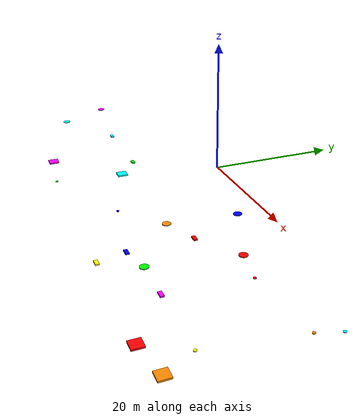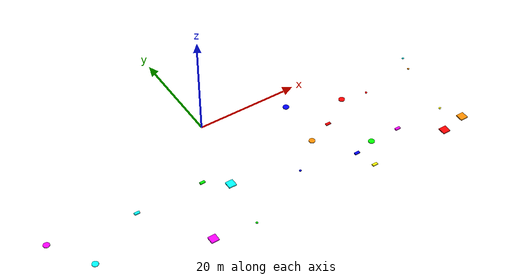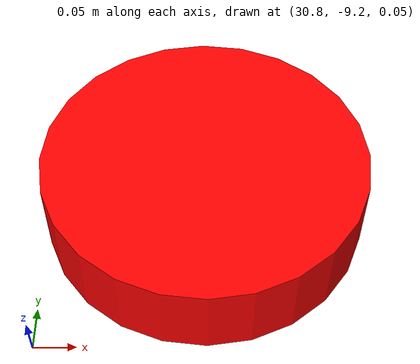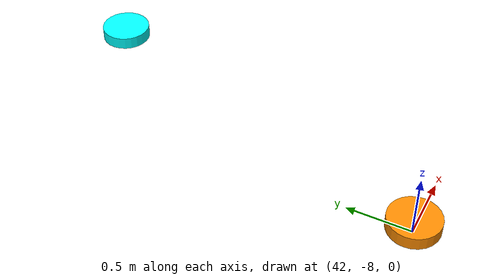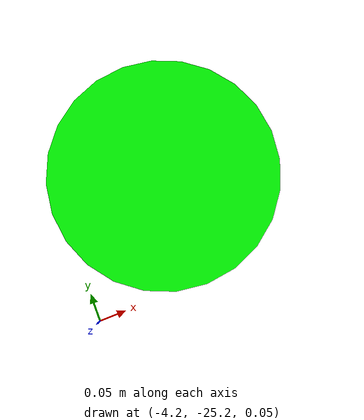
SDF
<sdf version="1.4">
 <world name="default">
  <physics type="ode">
   <max_step_size>0.001</max_step_size>
   <real_time_factor>1</real_time_factor>
   <real_time_update_rate>1000</real_time_update_rate>
   <gravity>0 0 -9.8</gravity>
  </physics>
  <spherical_coordinates>
   <surface_model>EARTH_WGS84</surface_model>
   <latitude_deg>24.4793194</latitude_deg>
   <longitude_deg>54.6105446</longitude_deg>
   <elevation>18</elevation>
   <heading_deg>0</heading_deg>
  </spherical_coordinates>
  <scene><sky><clouds><speed>12</speed></clouds></sky></scene>
  <include><uri>model://sun</uri></include>
  <model name="green_large_cylinder">
   <pose>24 -20 0 0 0 0</pose>
   <include><uri>model://cylinder_large_green</uri></include>
  </model>
  <model name="blue_large_cylinder">
   <pose>16 -4 0 0 0 0</pose>
   <include><uri>model://cylinder_large_blue</uri></include>
  </model>
  <model name="orange_large_cylinder">
   <pose>15 -14 0 0 0 0</pose>
   <include><uri>model://cylinder_large_orange</uri></include>
  </model>
  <model name="pink_large_cylinder">
   <pose>-36 -10 0 0 0 0</pose>
   <include><uri>model://cylinder_large_pink</uri></include>
  </model>
  <model name="cyan_large_cylinder">
   <pose>-31 -18 0 0 0 0</pose>
   <include><uri>model://cylinder_large_cyan</uri></include>
  </model>
  <model name="red_large_cylinder">
   <pose>26 -8 0 0 0 0</pose>
   <include><uri>model://cylinder_large_red</uri></include>
  </model>
  <model name="green_small_cylinder">
   <pose>-4 -25 0 0 0 0</pose>
   <include><uri>model://cylinder_small_green</uri></include>
  </model>
  <model name="blue_small_cylinder">
   <pose>9 -19 0 0 0 0</pose>
   <include><uri>model://cylinder_small_blue</uri></include>
  </model>
  <model name="yellow_small_cylinder">
   <pose>40 -20 0 0 0 0</pose>
   <include><uri>model://cylinder_small_yellow</uri></include>
  </model>
  <model name="orange_small_cylinder">
   <pose>42 -8 0 0 0 0</pose>
   <include><uri>model://cylinder_small_orange</uri></include>
  </model>
  <model name="cyan_small_cylinder">
   <pose>43 -5 0 0 0 0</pose>
   <include><uri>model://cylinder_small_cyan</uri></include>
  </model>
  <model name="red_small_cylinder">
   <pose>31 -9 0 0 0 0</pose>
   <include><uri>model://cylinder_small_red</uri></include>
  </model>
  <model name="orange_large_rectangle">
   <pose>42 -24 0 0 0 0</pose>
   <include><uri>model://rectangle_large_orange</uri></include>
  </model>
  <model name="pink_large_rectangle">
   <pose>-12 -24 0 0 0 0</pose>
   <include><uri>model://rectangle_large_pink</uri></include>
  </model>
  <model name="cyan_large_rectangle">
   <pose>-3 -15 0 0 0 0</pose>
   <include><uri>model://rectangle_large_cyan</uri></include>
  </model>
  <model name="red_large_rectangle">
   <pose>37 -25 0 0 0 0</pose>
   <include><uri>model://rectangle_large_red</uri></include>
  </model>
  <model name="green_small_object">
   <pose>-7 -12 0 0 0 0</pose>
   <include><uri>model://object_small_green</uri></include>
  </model>
  <model name="blue_small_object">
   <pose>20 -21 0 0 0 0</pose>
   <include><uri>model://object_small_blue</uri></include>
  </model>
  <model name="yellow_small_object">
   <pose>21 -25 0 0 0 0</pose>
   <include><uri>model://object_small_yellow</uri></include>
  </model>
  <model name="pink_small_object">
   <pose>30 -20 0 0 0 0</pose>
   <include><uri>model://object_small_pink</uri></include>
  </model>
  <model name="cyan_small_object">
   <pose>-20 -12 0 0 0 0</pose>
   <include><uri>model://object_small_cyan</uri></include>
  </model>
  <model name="red_small_object">
   <pose>20 -12 0 0 0 0</pose>
   <include><uri>model://object_small_red</uri></include>
  </model>
 </world>
</sdf>

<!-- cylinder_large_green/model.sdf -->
<sdf version='1.4'>
  <model name="small_cylinder_static_green">
    <link name="link" >
      <pose>0 0 0.1 0 0 0</pose>
      <inertial>
        <mass>0.5</mass>
        <inertia>
          <!-- http://answers.gazebosim.org/question/4372/the-inertia-matrix-explained/ -->
          <ixx>0.005914</ixx>    <!-- for a box: ixx = 0.083 * mass * (3*r*r + h*h) -->
          <ixy>0.0</ixy>         <!-- for a box: ixy = 0 -->
          <ixz>0.0</ixz>         <!-- for a box: ixz = 0 -->
          <iyy>0.005914</iyy>    <!-- for a box: iyy = 0.083 * mass * (3*r*r + h*h) -->
          <iyz>0.0</iyz>         <!-- for a box: iyz = 0 -->
          <izz>0.010000</izz>    <!-- for a box: izz = 0.5 * mass * (r*r) -->
        </inertia>
      </inertial>
      <collision name="collision">
        <geometry>
          <cylinder>
            <length>0.2</length>
            <radius>0.1</radius>
          </cylinder>
        </geometry>
      </collision>
      <visual name="visual">
        <geometry>
          <cylinder>
            <length>0.1</length>
            <radius>0.6</radius>
          </cylinder>
        </geometry>
        <material>
          <ambient>0 1 0 1</ambient> <!-- green -->
          <diffuse>0 1 0 1</diffuse>
          <specular>0.1 0.1 0.1 1</specular>
          <emissive>0 0 0 0</emissive>
        </material>
      </visual>
    </link>
  </model>
</sdf>

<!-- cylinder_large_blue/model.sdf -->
<sdf version='1.4'>
  <model name="small_cylinder_static_blue">
    <link name="link" >
      <pose>0 0 0.1 0 0 0</pose>
      <inertial>
        <mass>0.5</mass>
        <inertia>
          <!-- http://answers.gazebosim.org/question/4372/the-inertia-matrix-explained/ -->
          <ixx>0.005914</ixx>    <!-- for a box: ixx = 0.083 * mass * (3*r*r + h*h) -->
          <ixy>0.0</ixy>         <!-- for a box: ixy = 0 -->
          <ixz>0.0</ixz>         <!-- for a box: ixz = 0 -->
          <iyy>0.005914</iyy>    <!-- for a box: iyy = 0.083 * mass * (3*r*r + h*h) -->
          <iyz>0.0</iyz>         <!-- for a box: iyz = 0 -->
          <izz>0.010000</izz>    <!-- for a box: izz = 0.5 * mass * (r*r) -->
        </inertia>
      </inertial>
      <collision name="collision">
        <geometry>
          <cylinder>
            <length>0.4</length>
            <radius>0.2</radius>
          </cylinder>
        </geometry>
      </collision>
      <visual name="visual">
        <geometry>
          <cylinder>
            <length>0.1</length>
            <radius>0.6</radius>
          </cylinder>
        </geometry>
        <material>
          <ambient>0 0 1 1</ambient> <!-- Blue -->
          <diffuse>0 0 1 1</diffuse>
          <specular>0.1 0.1 0.1 1</specular>
          <emissive>0 0 0 0</emissive>
        </material>
      </visual>
    </link>
  </model>
</sdf>

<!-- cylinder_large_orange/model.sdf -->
<sdf version='1.4'>
  <model name="small_cylinder_static_red">
    <link name="link" >
      <pose>0 0 0.1 0 0 0</pose>
      <inertial>
        <mass>0.5</mass>
        <inertia>
          <!-- http://answers.gazebosim.org/question/4372/the-inertia-matrix-explained/ -->
          <ixx>0.005914</ixx>    <!-- for a box: ixx = 0.083 * mass * (3*r*r + h*h) -->
          <ixy>0.0</ixy>         <!-- for a box: ixy = 0 -->
          <ixz>0.0</ixz>         <!-- for a box: ixz = 0 -->
          <iyy>0.005914</iyy>    <!-- for a box: iyy = 0.083 * mass * (3*r*r + h*h) -->
          <iyz>0.0</iyz>         <!-- for a box: iyz = 0 -->
          <izz>0.010000</izz>    <!-- for a box: izz = 0.5 * mass * (r*r) -->
        </inertia>
      </inertial>
      <collision name="collision">
        <geometry>
          <cylinder>
            <length>0.2</length>
            <radius>0.1</radius>
          </cylinder>
        </geometry>
      </collision>
      <visual name="visual">
        <geometry>
          <cylinder>
            <length>0.1</length>
            <radius>0.6</radius>
          </cylinder>
        </geometry>
        <material>
           <ambient>1 0.549 0 1</ambient> <!-- dark Orange -->
          <diffuse>1 0.549 0 1</diffuse>
          <specular>0.1 0.1 0.1 1</specular>
          <emissive>0 0 0 0</emissive>
        </material>
      </visual>
    </link>
  </model>
</sdf>

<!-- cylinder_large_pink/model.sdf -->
<sdf version='1.4'>
  <model name="small_cylinder_static_green">
    <link name="link" >
      <pose>0 0 0.1 0 0 0</pose>
      <inertial>
        <mass>0.5</mass>
        <inertia>
          <!-- http://answers.gazebosim.org/question/4372/the-inertia-matrix-explained/ -->
          <ixx>0.005914</ixx>    <!-- for a box: ixx = 0.083 * mass * (3*r*r + h*h) -->
          <ixy>0.0</ixy>         <!-- for a box: ixy = 0 -->
          <ixz>0.0</ixz>         <!-- for a box: ixz = 0 -->
          <iyy>0.005914</iyy>    <!-- for a box: iyy = 0.083 * mass * (3*r*r + h*h) -->
          <iyz>0.0</iyz>         <!-- for a box: iyz = 0 -->
          <izz>0.010000</izz>    <!-- for a box: izz = 0.5 * mass * (r*r) -->
        </inertia>
      </inertial>
      <collision name="collision">
        <geometry>
          <cylinder>
            <length>0.2</length>
            <radius>0.1</radius>
          </cylinder>
        </geometry>
      </collision>
      <visual name="visual">
        <geometry>
          <cylinder>
            <length>0.1</length>
            <radius>0.6</radius>
          </cylinder>
        </geometry>
        <material>
          <ambient>1 0 1 1</ambient> <!-- pink -->
          <diffuse>1 0 1 1</diffuse>
          <specular>0.1 0.1 0.1 1</specular>
          <emissive>0 0 0 0</emissive>
        </material>
      </visual>
    </link>
  </model>
</sdf>

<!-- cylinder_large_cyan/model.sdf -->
<sdf version='1.4'>
  <model name="small_cylinder_static_blue">
    <link name="link" >
      <pose>0 0 0.1 0 0 0</pose>
      <inertial>
        <mass>0.5</mass>
        <inertia>
          <!-- http://answers.gazebosim.org/question/4372/the-inertia-matrix-explained/ -->
          <ixx>0.005914</ixx>    <!-- for a box: ixx = 0.083 * mass * (3*r*r + h*h) -->
          <ixy>0.0</ixy>         <!-- for a box: ixy = 0 -->
          <ixz>0.0</ixz>         <!-- for a box: ixz = 0 -->
          <iyy>0.005914</iyy>    <!-- for a box: iyy = 0.083 * mass * (3*r*r + h*h) -->
          <iyz>0.0</iyz>         <!-- for a box: iyz = 0 -->
          <izz>0.010000</izz>    <!-- for a box: izz = 0.5 * mass * (r*r) -->
        </inertia>
      </inertial>
      <collision name="collision">
        <geometry>
          <cylinder>
            <length>0.4</length>
            <radius>0.2</radius>
          </cylinder>
        </geometry>
      </collision>
      <visual name="visual">
        <geometry>
          <cylinder>
            <length>0.1</length>
            <radius>0.6</radius>
          </cylinder>
        </geometry>
        <material>
         <ambient>0 1 1 1</ambient> <!-- cyan -->
          <diffuse>0 1 1 1</diffuse>
          <specular>0.1 0.1 0.1 1</specular>
          <emissive>0 0 0 0</emissive>
        </material>
      </visual>
    </link>
  </model>
</sdf>

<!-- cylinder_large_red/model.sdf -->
<sdf version='1.4'>
  <model name="small_cylinder_static_blue">
    <link name="link" >
      <pose>0 0 0.1 0 0 0</pose>
      <inertial>
        <mass>0.5</mass>
        <inertia>
          <!-- http://answers.gazebosim.org/question/4372/the-inertia-matrix-explained/ -->
          <ixx>0.005914</ixx>    <!-- for a box: ixx = 0.083 * mass * (3*r*r + h*h) -->
          <ixy>0.0</ixy>         <!-- for a box: ixy = 0 -->
          <ixz>0.0</ixz>         <!-- for a box: ixz = 0 -->
          <iyy>0.005914</iyy>    <!-- for a box: iyy = 0.083 * mass * (3*r*r + h*h) -->
          <iyz>0.0</iyz>         <!-- for a box: iyz = 0 -->
          <izz>0.010000</izz>    <!-- for a box: izz = 0.5 * mass * (r*r) -->
        </inertia>
      </inertial>
      <collision name="collision">
        <geometry>
          <cylinder>
            <length>0.4</length>
            <radius>0.2</radius>
          </cylinder>
        </geometry>
      </collision>
      <visual name="visual">
        <geometry>
          <cylinder>
            <length>0.1</length>
            <radius>0.6</radius>
          </cylinder>
        </geometry>
        <material>
         <ambient>1 0 0 1</ambient> <!-- cyan -->
          <diffuse>1 0 0 1</diffuse>
          <specular>0.1 0.1 0.1 1</specular>
          <emissive>0 0 0 0</emissive>
        </material>
      </visual>
    </link>
  </model>
</sdf>

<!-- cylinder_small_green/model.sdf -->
<sdf version='1.4'>
  <model name="small_cylinder_static_green">
    <link name="link" >
      <pose>0 0 0.1 0 0 0</pose>
      <inertial>
        <mass>0.5</mass>
        <inertia>
          <!-- http://answers.gazebosim.org/question/4372/the-inertia-matrix-explained/ -->
          <ixx>0.005914</ixx>    <!-- for a box: ixx = 0.083 * mass * (3*r*r + h*h) -->
          <ixy>0.0</ixy>         <!-- for a box: ixy = 0 -->
          <ixz>0.0</ixz>         <!-- for a box: ixz = 0 -->
          <iyy>0.005914</iyy>    <!-- for a box: iyy = 0.083 * mass * (3*r*r + h*h) -->
          <iyz>0.0</iyz>         <!-- for a box: iyz = 0 -->
          <izz>0.010000</izz>    <!-- for a box: izz = 0.5 * mass * (r*r) -->
        </inertia>
      </inertial>
      <collision name="collision">
        <geometry>
          <cylinder>
            <length>0.2</length>
            <radius>0.1</radius>
          </cylinder>
        </geometry>
      </collision>
      <visual name="visual">
        <geometry>
          <cylinder>
            <length>0.1</length>
            <radius>0.2</radius>
          </cylinder>
        </geometry>
        <material>
          <ambient>0 1 0 1</ambient> <!-- green -->
          <diffuse>0 1 0 1</diffuse>
          <specular>0.1 0.1 0.1 1</specular>
          <emissive>0 0 0 0</emissive>
        </material>
      </visual>
    </link>
  </model>
</sdf>

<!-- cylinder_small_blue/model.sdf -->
<sdf version='1.4'>
  <model name="small_cylinder_static_blue">
    <link name="link" >
      <pose>0 0 0.1 0 0 0</pose>
      <inertial>
        <mass>0.5</mass>
        <inertia>
          <!-- http://answers.gazebosim.org/question/4372/the-inertia-matrix-explained/ -->
          <ixx>0.005914</ixx>    <!-- for a box: ixx = 0.083 * mass * (3*r*r + h*h) -->
          <ixy>0.0</ixy>         <!-- for a box: ixy = 0 -->
          <ixz>0.0</ixz>         <!-- for a box: ixz = 0 -->
          <iyy>0.005914</iyy>    <!-- for a box: iyy = 0.083 * mass * (3*r*r + h*h) -->
          <iyz>0.0</iyz>         <!-- for a box: iyz = 0 -->
          <izz>0.010000</izz>    <!-- for a box: izz = 0.5 * mass * (r*r) -->
        </inertia>
      </inertial>
      <collision name="collision">
        <geometry>
          <cylinder>
            <length>0.2</length>
            <radius>0.1</radius>
          </cylinder>
        </geometry>
      </collision>
      <visual name="visual">
        <geometry>
          <cylinder>
            <length>0.1</length>
            <radius>0.2</radius>
          </cylinder>
        </geometry>
        <material>
          <ambient>0 0 1 1</ambient> <!-- Blue -->
          <diffuse>0 0 1 1</diffuse>
          <specular>0.1 0.1 0.1 1</specular>
          <emissive>0 0 0 0</emissive>
        </material>
      </visual>
    </link>
  </model>
</sdf>

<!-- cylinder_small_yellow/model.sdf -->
<sdf version='1.4'>
  <model name="small_cylinder_static_green">
    <link name="link" >
      <pose>0 0 0.1 0 0 0</pose>
      <inertial>
        <mass>0.5</mass>
        <inertia>
          <!-- http://answers.gazebosim.org/question/4372/the-inertia-matrix-explained/ -->
          <ixx>0.005914</ixx>    <!-- for a box: ixx = 0.083 * mass * (3*r*r + h*h) -->
          <ixy>0.0</ixy>         <!-- for a box: ixy = 0 -->
          <ixz>0.0</ixz>         <!-- for a box: ixz = 0 -->
          <iyy>0.005914</iyy>    <!-- for a box: iyy = 0.083 * mass * (3*r*r + h*h) -->
          <iyz>0.0</iyz>         <!-- for a box: iyz = 0 -->
          <izz>0.010000</izz>    <!-- for a box: izz = 0.5 * mass * (r*r) -->
        </inertia>
      </inertial>
      <collision name="collision">
        <geometry>
          <cylinder>
            <length>0.2</length>
            <radius>0.1</radius>
          </cylinder>
        </geometry>
      </collision>
      <visual name="visual">
        <geometry>
          <cylinder>
            <length>0.1</length>
            <radius>0.2</radius>
          </cylinder>
        </geometry>
        <material>
          <ambient>1 1 0 1</ambient> <!-- yellow -->
          <diffuse>1 1 0 1</diffuse>
          <specular>0.1 0.1 0.1 1</specular>
          <emissive>0 0 0 0</emissive>
        </material>
      </visual>
    </link>
  </model>
</sdf>

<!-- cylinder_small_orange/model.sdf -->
<sdf version='1.4'>
  <model name="small_cylinder_static_red">
    <link name="link" >
      <pose>0 0 0.1 0 0 0</pose>
      <inertial>
        <mass>0.5</mass>
        <inertia>
          <!-- http://answers.gazebosim.org/question/4372/the-inertia-matrix-explained/ -->
          <ixx>0.005914</ixx>    <!-- for a box: ixx = 0.083 * mass * (3*r*r + h*h) -->
          <ixy>0.0</ixy>         <!-- for a box: ixy = 0 -->
          <ixz>0.0</ixz>         <!-- for a box: ixz = 0 -->
          <iyy>0.005914</iyy>    <!-- for a box: iyy = 0.083 * mass * (3*r*r + h*h) -->
          <iyz>0.0</iyz>         <!-- for a box: iyz = 0 -->
          <izz>0.010000</izz>    <!-- for a box: izz = 0.5 * mass * (r*r) -->
        </inertia>
      </inertial>
      <collision name="collision">
        <geometry>
          <cylinder>
            <length>0.2</length>
            <radius>0.1</radius>
          </cylinder>
        </geometry>
      </collision>
      <visual name="visual">
        <geometry>
          <cylinder>
            <length>0.1</length>
            <radius>0.2</radius>
          </cylinder>
        </geometry>
        <material>
           <ambient>1 0.549 0 1</ambient> <!-- dark Orange -->
          <diffuse>1 0.549 0 1</diffuse>
          <specular>0.1 0.1 0.1 1</specular>
          <emissive>0 0 0 0</emissive>
        </material>
      </visual>
    </link>
  </model>
</sdf>

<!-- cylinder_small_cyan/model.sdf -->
<sdf version='1.4'>
  <model name="small_cylinder_static_green">
    <link name="link" >
      <pose>0 0 0.1 0 0 0</pose>
      <inertial>
        <mass>0.5</mass>
        <inertia>
          <!-- http://answers.gazebosim.org/question/4372/the-inertia-matrix-explained/ -->
          <ixx>0.005914</ixx>    <!-- for a box: ixx = 0.083 * mass * (3*r*r + h*h) -->
          <ixy>0.0</ixy>         <!-- for a box: ixy = 0 -->
          <ixz>0.0</ixz>         <!-- for a box: ixz = 0 -->
          <iyy>0.005914</iyy>    <!-- for a box: iyy = 0.083 * mass * (3*r*r + h*h) -->
          <iyz>0.0</iyz>         <!-- for a box: iyz = 0 -->
          <izz>0.010000</izz>    <!-- for a box: izz = 0.5 * mass * (r*r) -->
        </inertia>
      </inertial>
      <collision name="collision">
        <geometry>
          <cylinder>
            <length>0.2</length>
            <radius>0.1</radius>
          </cylinder>
        </geometry>
      </collision>
      <visual name="visual">
        <geometry>
          <cylinder>
            <length>0.1</length>
            <radius>0.2</radius>
          </cylinder>
        </geometry>
        <material>
          <ambient>0 1 1 1</ambient> <!-- pink -->
          <diffuse>0 1 1 1</diffuse>
          <specular>0.1 0.1 0.1 1</specular>
          <emissive>0 0 0 0</emissive>
        </material>
      </visual>
    </link>
  </model>
</sdf>

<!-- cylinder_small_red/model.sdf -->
<sdf version='1.4'>
  <model name="small_cylinder_static_green">
    <link name="link" >
      <pose>0 0 0.1 0 0 0</pose>
      <inertial>
        <mass>0.5</mass>
        <inertia>
          <!-- http://answers.gazebosim.org/question/4372/the-inertia-matrix-explained/ -->
          <ixx>0.005914</ixx>    <!-- for a box: ixx = 0.083 * mass * (3*r*r + h*h) -->
          <ixy>0.0</ixy>         <!-- for a box: ixy = 0 -->
          <ixz>0.0</ixz>         <!-- for a box: ixz = 0 -->
          <iyy>0.005914</iyy>    <!-- for a box: iyy = 0.083 * mass * (3*r*r + h*h) -->
          <iyz>0.0</iyz>         <!-- for a box: iyz = 0 -->
          <izz>0.010000</izz>    <!-- for a box: izz = 0.5 * mass * (r*r) -->
        </inertia>
      </inertial>
      <collision name="collision">
        <geometry>
          <cylinder>
            <length>0.2</length>
            <radius>0.1</radius>
          </cylinder>
        </geometry>
      </collision>
      <visual name="visual">
        <geometry>
          <cylinder>
            <length>0.1</length>
            <radius>0.2</radius>
          </cylinder>
        </geometry>
        <material>
          <ambient>1 0 0 1</ambient> <!-- yellow -->
          <diffuse>1 0 0 1</diffuse>
          <specular>0.1 0.1 0.1 1</specular>
          <emissive>0 0 0 0</emissive>
        </material>
      </visual>
    </link>
  </model>
</sdf>

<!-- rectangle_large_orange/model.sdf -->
<sdf version='1.4'>
  <model name="small_rectangle">
    <link name="link" >
      <pose>0 0 0.1 0 0 0</pose>
      <inertial>
        <mass>0.5</mass>
        <inertia>
          <!-- http://answers.gazebosim.org/question/4372/the-inertia-matrix-explained/ -->
          <ixx>0.005395</ixx>   <!-- for a box: ixx = 0.083 * mass * (y*y + z*z) -->
          <ixy>0.0</ixy>        <!-- for a box: ixy = 0 -->
          <ixz>0.0</ixz>        <!-- for a box: ixz = 0 -->
          <iyy>0.005395</iyy>   <!-- for a box: iyy = 0.083 * mass * (x*x + z*z) -->
          <iyz>0.0</iyz>        <!-- for a box: iyz = 0 -->
          <izz>0.007470</izz>   <!-- for a box: izz = 0.083 * mass * (x*x + y*y) -->
        </inertia>
      </inertial>
      <collision name="collision">
        <geometry>
          <box>
            <size>0.3 0.3 0.2</size>
          </box>
        </geometry>
      </collision>
      <visual name="visual">
        <geometry>
          <box>
            <size>1.5 1.5 0.2</size>
          </box>
        </geometry>
        <material>
          <ambient>1 0.549 0 1</ambient> <!-- dark Orange -->
          <diffuse>1 0.549 0 1</diffuse>
          <specular>0.1 0.1 0.1 1</specular>
          <emissive>0 0 0 0</emissive>
        </material>
      </visual>
    </link>
  </model>
</sdf>

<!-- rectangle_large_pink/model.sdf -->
<sdf version='1.4'>
  <model name="small_rectangle">
    <link name="link" >
      <pose>0 0 0.1 0 0 0</pose>
      <inertial>
        <mass>0.5</mass>
        <inertia>
          <!-- http://answers.gazebosim.org/question/4372/the-inertia-matrix-explained/ -->
          <ixx>0.005395</ixx>   <!-- for a box: ixx = 0.083 * mass * (y*y + z*z) -->
          <ixy>0.0</ixy>        <!-- for a box: ixy = 0 -->
          <ixz>0.0</ixz>        <!-- for a box: ixz = 0 -->
          <iyy>0.005395</iyy>   <!-- for a box: iyy = 0.083 * mass * (x*x + z*z) -->
          <iyz>0.0</iyz>        <!-- for a box: iyz = 0 -->
          <izz>0.007470</izz>   <!-- for a box: izz = 0.083 * mass * (x*x + y*y) -->
        </inertia>
      </inertial>
      <collision name="collision">
        <geometry>
          <box>
            <size>0.3 0.3 0.2</size>
          </box>
        </geometry>
      </collision>
      <visual name="visual">
        <geometry>
          <box>
            <size>1.5 1.5 0.2</size>
          </box>
        </geometry>
        <material>
         <ambient>1 0 1 1</ambient> <!-- pink -->
          <diffuse>1 0 1 1</diffuse>
          <specular>0.1 0.1 0.1 1</specular>
          <emissive>0 0 0 0</emissive>
        </material>
      </visual>
    </link>
  </model>
</sdf>

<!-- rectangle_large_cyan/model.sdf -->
<sdf version='1.4'>
  <model name="small_rectangle">
    <link name="link" >
      <pose>0 0 0.1 0 0 0</pose>
      <inertial>
        <mass>0.5</mass>
        <inertia>
          <!-- http://answers.gazebosim.org/question/4372/the-inertia-matrix-explained/ -->
          <ixx>0.005395</ixx>   <!-- for a box: ixx = 0.083 * mass * (y*y + z*z) -->
          <ixy>0.0</ixy>        <!-- for a box: ixy = 0 -->
          <ixz>0.0</ixz>        <!-- for a box: ixz = 0 -->
          <iyy>0.005395</iyy>   <!-- for a box: iyy = 0.083 * mass * (x*x + z*z) -->
          <iyz>0.0</iyz>        <!-- for a box: iyz = 0 -->
          <izz>0.007470</izz>   <!-- for a box: izz = 0.083 * mass * (x*x + y*y) -->
        </inertia>
      </inertial>
      <collision name="collision">
        <geometry>
          <box>
            <size>0.3 0.3 0.2</size>
          </box>
        </geometry>
      </collision>
      <visual name="visual">
        <geometry>
          <box>
            <size>1.5 1.5 0.2</size>
          </box>
        </geometry>
        <material>
          <ambient>0 1 1 1</ambient> <!-- Royal Blue -->
          <diffuse>0 1 1 1</diffuse>
          <specular>0.1 0.1 0.1 1</specular>
          <emissive>0 0 0 0</emissive>
        </material>
      </visual>
    </link>
  </model>
</sdf>

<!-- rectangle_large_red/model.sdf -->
<sdf version='1.4'>
  <model name="small_rectangle">
    <link name="link" >
      <pose>0 0 0.1 0 0 0</pose>
      <inertial>
        <mass>0.5</mass>
        <inertia>
          <!-- http://answers.gazebosim.org/question/4372/the-inertia-matrix-explained/ -->
          <ixx>0.005395</ixx>   <!-- for a box: ixx = 0.083 * mass * (y*y + z*z) -->
          <ixy>0.0</ixy>        <!-- for a box: ixy = 0 -->
          <ixz>0.0</ixz>        <!-- for a box: ixz = 0 -->
          <iyy>0.005395</iyy>   <!-- for a box: iyy = 0.083 * mass * (x*x + z*z) -->
          <iyz>0.0</iyz>        <!-- for a box: iyz = 0 -->
          <izz>0.007470</izz>   <!-- for a box: izz = 0.083 * mass * (x*x + y*y) -->
        </inertia>
      </inertial>
      <collision name="collision">
        <geometry>
          <box>
            <size>0.3 0.3 0.2</size>
          </box>
        </geometry>
      </collision>
      <visual name="visual">
        <geometry>
          <box>
            <size>1.5 1.5 0.2</size>
          </box>
        </geometry>
        <material>
          <ambient>1 0 0 1</ambient> <!-- Royal Blue -->
          <diffuse>1 0 0 1</diffuse>
          <specular>0.1 0.1 0.1 1</specular>
          <emissive>0 0 0 0</emissive>
        </material>
      </visual>
    </link>
  </model>
</sdf>

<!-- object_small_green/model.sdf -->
<sdf version='1.4'>
  <model name="large_object">
    <link name="link" >
      <pose>0 0 0.1 0 0 0</pose>
      <inertial>
        <mass>2.0</mass>
        <inertia>
          <!-- http://answers.gazebosim.org/question/4372/the-inertia-matrix-explained/ -->
          <ixx>0.01328</ixx>    <!-- for a box: ixx = 0.083 * mass * (y*y + z*z) -->
          <ixy>0.0</ixy>        <!-- for a box: ixy = 0 -->
          <ixz>0.0</ixz>        <!-- for a box: ixz = 0 -->
          <iyy>0.67064</iyy>    <!-- for a box: iyy = 0.083 * mass * (x*x + z*z) -->
          <iyz>0.0</iyz>        <!-- for a box: iyz = 0 -->
          <izz>0.67064</izz>    <!-- for a box: izz = 0.083 * mass * (x*x + y*y) -->
        </inertia>
      </inertial>
      <collision name="collision">
        <geometry>
          <box>
            <size>2.0 0.2 0.2</size>
          </box>
        </geometry>
      </collision>
      <visual name="visual">
        <geometry>
          <box>
            <size>1.0 0.5 0.2</size>
          </box>
        </geometry>
        <material>
          <ambient>0 1 0 1</ambient> <!-- green -->
          <diffuse>0 1 0 1</diffuse>
          <specular>0.1 0.1 0.1 1</specular>
          <emissive>0 0 0 0</emissive>
        </material>
      </visual>
    </link>
  </model>
</sdf>

255-140-0

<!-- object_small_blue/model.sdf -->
<sdf version='1.4'>
  <model name="large_object">
    <link name="link" >
      <pose>0 0 0.1 0 0 0</pose>
      <inertial>
        <mass>2.0</mass>
        <inertia>
          <!-- http://answers.gazebosim.org/question/4372/the-inertia-matrix-explained/ -->
          <ixx>0.01328</ixx>    <!-- for a box: ixx = 0.083 * mass * (y*y + z*z) -->
          <ixy>0.0</ixy>        <!-- for a box: ixy = 0 -->
          <ixz>0.0</ixz>        <!-- for a box: ixz = 0 -->
          <iyy>0.67064</iyy>    <!-- for a box: iyy = 0.083 * mass * (x*x + z*z) -->
          <iyz>0.0</iyz>        <!-- for a box: iyz = 0 -->
          <izz>0.67064</izz>    <!-- for a box: izz = 0.083 * mass * (x*x + y*y) -->
        </inertia>
      </inertial>
      <collision name="collision">
        <geometry>
          <box>
            <size>2.0 0.2 0.2</size>
          </box>
        </geometry>
      </collision>
      <visual name="visual">
        <geometry>
          <box>
            <size>1.0 0.5 0.2</size>
          </box>
        </geometry>
        <material>
          <ambient>0 0 1 1</ambient> <!-- Blue -->
          <diffuse>0 0 1 1</diffuse>
          <specular>0.1 0.1 0.1 1</specular>
          <emissive>0 0 0 0</emissive>
        </material>
      </visual>
    </link>
  </model>
</sdf>

255-140-0

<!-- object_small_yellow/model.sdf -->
<sdf version='1.4'>
  <model name="large_object">
    <link name="link" >
      <pose>0 0 0.1 0 0 0</pose>
      <inertial>
        <mass>2.0</mass>
        <inertia>
          <!-- http://answers.gazebosim.org/question/4372/the-inertia-matrix-explained/ -->
          <ixx>0.01328</ixx>    <!-- for a box: ixx = 0.083 * mass * (y*y + z*z) -->
          <ixy>0.0</ixy>        <!-- for a box: ixy = 0 -->
          <ixz>0.0</ixz>        <!-- for a box: ixz = 0 -->
          <iyy>0.67064</iyy>    <!-- for a box: iyy = 0.083 * mass * (x*x + z*z) -->
          <iyz>0.0</iyz>        <!-- for a box: iyz = 0 -->
          <izz>0.67064</izz>    <!-- for a box: izz = 0.083 * mass * (x*x + y*y) -->
        </inertia>
      </inertial>
      <collision name="collision">
        <geometry>
          <box>
            <size>2.0 0.2 0.2</size>
          </box>
        </geometry>
      </collision>
      <visual name="visual">
        <geometry>
          <box>
            <size>1.0 0.5 0.2</size>
          </box>
        </geometry>
        <material>
           <ambient>1 1 0 1</ambient> <!-- yellow -->
          <diffuse>1 1 0 1</diffuse>
          <specular>0.1 0.1 0.1 1</specular>
          <emissive>0 0 0 0</emissive>
        </material>
      </visual>
    </link>
  </model>
</sdf>

255-140-0

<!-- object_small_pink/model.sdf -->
<sdf version='1.4'>
  <model name="large_object">
    <link name="link" >
      <pose>0 0 0.1 0 0 0</pose>
      <inertial>
        <mass>2.0</mass>
        <inertia>
          <!-- http://answers.gazebosim.org/question/4372/the-inertia-matrix-explained/ -->
          <ixx>0.01328</ixx>    <!-- for a box: ixx = 0.083 * mass * (y*y + z*z) -->
          <ixy>0.0</ixy>        <!-- for a box: ixy = 0 -->
          <ixz>0.0</ixz>        <!-- for a box: ixz = 0 -->
          <iyy>0.67064</iyy>    <!-- for a box: iyy = 0.083 * mass * (x*x + z*z) -->
          <iyz>0.0</iyz>        <!-- for a box: iyz = 0 -->
          <izz>0.67064</izz>    <!-- for a box: izz = 0.083 * mass * (x*x + y*y) -->
        </inertia>
      </inertial>
      <collision name="collision">
        <geometry>
          <box>
            <size>2.0 0.2 0.2</size>
          </box>
        </geometry>
      </collision>
      <visual name="visual">
        <geometry>
          <box>
            <size>1.0 0.5 0.2</size>
          </box>
        </geometry>
        <material>
          <ambient>1 0 1 1</ambient> <!-- pink -->
          <diffuse>1 0 1 1</diffuse>
          <specular>0.1 0.1 0.1 1</specular>
          <emissive>0 0 0 0</emissive>
        </material>
      </visual>
    </link>
  </model>
</sdf>

255-140-0

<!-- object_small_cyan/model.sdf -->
<sdf version='1.4'>
  <model name="large_object">
    <link name="link" >
      <pose>0 0 0.1 0 0 0</pose>
      <inertial>
        <mass>2.0</mass>
        <inertia>
          <!-- http://answers.gazebosim.org/question/4372/the-inertia-matrix-explained/ -->
          <ixx>0.01328</ixx>    <!-- for a box: ixx = 0.083 * mass * (y*y + z*z) -->
          <ixy>0.0</ixy>        <!-- for a box: ixy = 0 -->
          <ixz>0.0</ixz>        <!-- for a box: ixz = 0 -->
          <iyy>0.67064</iyy>    <!-- for a box: iyy = 0.083 * mass * (x*x + z*z) -->
          <iyz>0.0</iyz>        <!-- for a box: iyz = 0 -->
          <izz>0.67064</izz>    <!-- for a box: izz = 0.083 * mass * (x*x + y*y) -->
        </inertia>
      </inertial>
      <collision name="collision">
        <geometry>
          <box>
            <size>2.0 0.2 0.2</size>
          </box>
        </geometry>
      </collision>
      <visual name="visual">
        <geometry>
          <box>
            <size>1.0 0.5 0.2</size>
          </box>
        </geometry>
        <material>
          <ambient>0 1 1 1</ambient> <!-- Blue -->
          <diffuse>0 1 1 1</diffuse>
          <specular>0.1 0.1 0.1 1</specular>
          <emissive>0 0 0 0</emissive>
        </material>
      </visual>
    </link>
  </model>
</sdf>

255-140-0

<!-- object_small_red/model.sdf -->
<sdf version='1.4'>
  <model name="large_object">
    <link name="link" >
      <pose>0 0 0.1 0 0 0</pose>
      <inertial>
        <mass>2.0</mass>
        <inertia>
          <!-- http://answers.gazebosim.org/question/4372/the-inertia-matrix-explained/ -->
          <ixx>0.01328</ixx>    <!-- for a box: ixx = 0.083 * mass * (y*y + z*z) -->
          <ixy>0.0</ixy>        <!-- for a box: ixy = 0 -->
          <ixz>0.0</ixz>        <!-- for a box: ixz = 0 -->
          <iyy>0.67064</iyy>    <!-- for a box: iyy = 0.083 * mass * (x*x + z*z) -->
          <iyz>0.0</iyz>        <!-- for a box: iyz = 0 -->
          <izz>0.67064</izz>    <!-- for a box: izz = 0.083 * mass * (x*x + y*y) -->
        </inertia>
      </inertial>
      <collision name="collision">
        <geometry>
          <box>
            <size>2.0 0.2 0.2</size>
          </box>
        </geometry>
      </collision>
      <visual name="visual">
        <geometry>
          <box>
            <size>1.0 0.5 0.2</size>
          </box>
        </geometry>
        <material>
          <ambient>1 0 0 1</ambient> <!-- Blue -->
          <diffuse>1 0 0 1</diffuse>
          <specular>0.1 0.1 0.1 1</specular>
          <emissive>0 0 0 0</emissive>
        </material>
      </visual>
    </link>
  </model>
</sdf>

255-140-0
